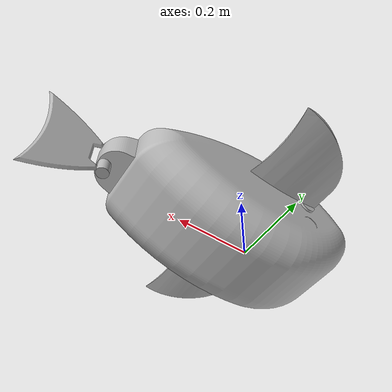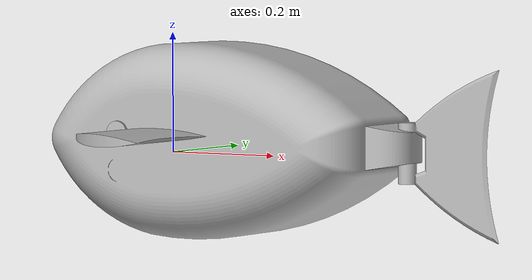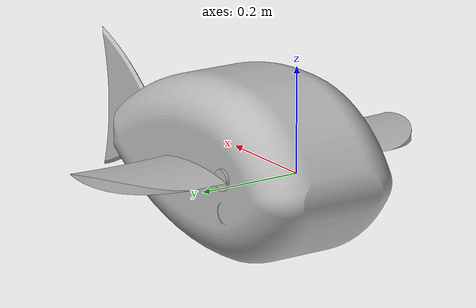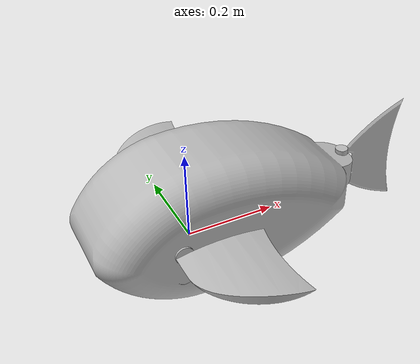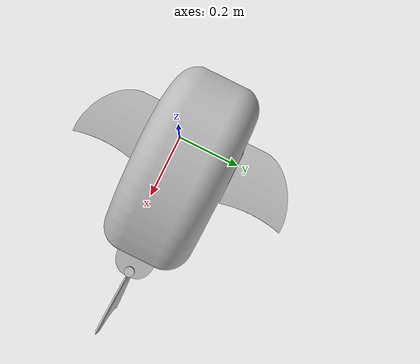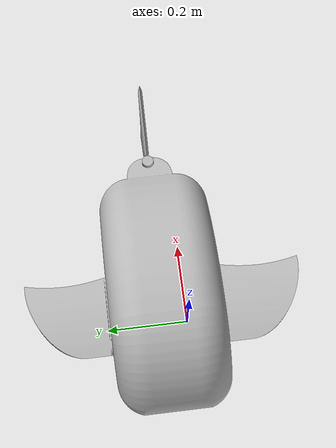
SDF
<sdf version='1.6'>
  <model name='fish_hpurv'>
    <link name='link_base'>
      <inertial>
        <pose>0.032582 0.049301 -0.019765 1.57 -0 0</pose>
        <mass>12.2</mass>
        <inertia>
          <ixx>0.0104225</ixx>
          <ixy>-1.73196e-18</ixy>
          <ixz>-3.47083e-18</ixz>
          <iyy>0.010101</iyy>
          <iyz>-2.56038e-07</iyz>
          <izz>0.0104225</izz>
        </inertia>
      </inertial>
      <collision name='link_base_collision'>
        <pose>0.032582 0.049301 -0.020428 1.57 -0 0</pose>
        <geometry>
          <mesh>
            <scale>1 1 1</scale>
            <uri>/home/uav/ros2_ws/install/fish_hpurv/share/fish_hpurv/meshes/link_base.stl</uri>
          </mesh>
        </geometry>
        <surface>
          <contact>
            <ode/>
          </contact>
          <friction>
            <ode/>
          </friction>
        </surface>
      </collision>
      <collision name='link_base_fixed_joint_lump__imu_link_collision_1'>
        <pose>0.032582 0.049301 0.02 0 -0 0</pose>
        <geometry>
          <box>
            <size>0.01 0.01 0.01</size>
          </box>
        </geometry>
        <surface>
          <contact>
            <ode/>
          </contact>
          <friction>
            <ode/>
          </friction>
        </surface>
      </collision>
      <collision name='link_base_fixed_joint_lump__laser_frame_collision_2'>
        <pose>0.032582 0.049301 0.02 0 -0 0</pose>
        <geometry>
          <cylinder>
            <length>0.04</length>
            <radius>0.05</radius>
          </cylinder>
        </geometry>
        <surface>
          <contact>
            <ode/>
          </contact>
          <friction>
            <ode/>
          </friction>
        </surface>
      </collision>
      <visual name='link_base_visual'>
        <pose>0.032582 0.049301 0.02 1.57 -0 0</pose>
        <geometry>
          <mesh>
            <scale>1 1 1</scale>
            <uri>/home/uav/ros2_ws/install/fish_hpurv/share/fish_hpurv/meshes/link_base.stl</uri>
          </mesh>
        </geometry>
      </visual>
      <visual name='link_base_fixed_joint_lump__imu_link_visual_1'>
        <pose>0.032582 0.049301 0.02 0 -0 0</pose>
        <geometry>
          <box>
            <size>0.01 0.01 0.01</size>
          </box>
        </geometry>
      </visual>
      <visual name='link_base_fixed_joint_lump__laser_frame_visual_2'>
        <pose>0.032582 0.049301 0.02 0 -0 0</pose>
        <geometry>
          <cylinder>
            <length>0.04</length>
            <radius>0.05</radius>
          </cylinder>
        </geometry>
        <material>
          <script>
            <name>Gazebo/Red</name>
            <uri>file://media/materials/scripts/gazebo.material</uri>
          </script>
        </material>
      </visual>
      <sensor name='dvl_sensor' type='ray'>
        <pose>0.03 -0.085 -0.06 3.14159 0.001593 3.14159</pose>
        <visualize>1</visualize>
        <update_rate>10</update_rate>
        <ray>
          <scan>
            <horizontal>
              <samples>4</samples>
              <min_angle>0</min_angle>
              <max_angle>6.28319</max_angle>
              <resolution>1</resolution>
            </horizontal>
            <vertical>
              <samples>1</samples>
              <min_angle>1.2217</min_angle>
              <max_angle>1.2217</max_angle>
            </vertical>
          </scan>
          <range>
            <min>0.1</min>
            <max>100</max>
          </range>
        </ray>
        <plugin name='custom_dvl_plugin' filename='libfish_dvl_plugin.so'/>
      </sensor>
      <sensor name='imu_sensor' type='imu'>
        <update_rate>50</update_rate>
        <always_on>1</always_on>
        <visualize>1</visualize>
        <plugin name='imu_plugin' filename='libgazebo_ros_imu_sensor.so'>
          <ros>
            <argument>~/out:=/imu/data</argument>
          </ros>
          <topicName>/imu/data</topicName>
          <frameName>imu_link</frameName>
        </plugin>
        <pose>0.032582 0.049301 0.02 0 -0 0</pose>
      </sensor>
      <sensor name='laser' type='ray'>
        <visualize>1</visualize>
        <update_rate>10</update_rate>
        <ray>
          <scan>
            <horizontal>
              <samples>360</samples>
              <min_angle>-3.14</min_angle>
              <max_angle>3.14</max_angle>
              <resolution>1</resolution>
            </horizontal>
          </scan>
          <range>
            <min>0.3</min>
            <max>12</max>
          </range>
        </ray>
        <plugin name='laser_controller' filename='libgazebo_ros_ray_sensor.so'>
          <ros>
            <argument>~/out:=/scan</argument>
          </ros>
          <output_type>sensor_msgs/LaserScan</output_type>
          <frame_name>laser_frame</frame_name>
        </plugin>
        <pose>0.032582 0.049301 0.02 0 -0 0</pose>
      </sensor>
    </link>
    <joint name='caudal_joint' type='revolute'>
      <pose relative_to='link_base'>0.425323 0.05 0.06 0 -0 0</pose>
      <parent>link_base</parent>
      <child>link_caudal</child>
      <axis>
        <xyz>0 0 1</xyz>
        <limit>
          <lower>-0.523599</lower>
          <upper>0.523599</upper>
          <effort>10</effort>
          <velocity>10</velocity>
        </limit>
        <dynamics>
          <spring_reference>0</spring_reference>
          <spring_stiffness>0</spring_stiffness>
        </dynamics>
      </axis>
    </joint>
    <link name='link_caudal'>
      <pose relative_to='caudal_joint'>0 0 0 0 -0 0</pose>
      <inertial>
        <pose>-0.378805 0 -0.05 1.5708 -0 0</pose>
        <mass>0.2</mass>
        <inertia>
          <ixx>0.005</ixx>
          <ixy>0</ixy>
          <ixz>0</ixz>
          <iyy>0.005</iyy>
          <iyz>0</iyz>
          <izz>0.005</izz>
        </inertia>
      </inertial>
      <collision name='link_caudal_collision'>
        <pose>-0.378805 0 -0.05 1.5708 -0 0</pose>
        <geometry>
          <mesh>
            <scale>1 1 1</scale>
            <uri>/home/uav/ros2_ws/install/fish_hpurv/share/fish_hpurv/meshes/link_caudal.stl</uri>
          </mesh>
        </geometry>
      </collision>
      <visual name='link_caudal_visual'>
        <pose>-0.378805 0 -0.05 1.5708 -0 0</pose>
        <geometry>
          <mesh>
            <scale>1 1 1</scale>
            <uri>/home/uav/ros2_ws/install/fish_hpurv/share/fish_hpurv/meshes/link_caudal.stl</uri>
          </mesh>
        </geometry>
      </visual>
    </link>
    <joint name='joint1' type='revolute'>
      <pose relative_to='link_base'>-0.05 0.18 0.035 1.57 -0 0</pose>
      <parent>link_base</parent>
      <child>link_pectoral_left</child>
      <axis>
        <xyz>0 0 1</xyz>
        <limit>
          <lower>-0.785398</lower>
          <upper>0.785398</upper>
          <effort>10</effort>
          <velocity>10</velocity>
        </limit>
        <dynamics>
          <spring_reference>0</spring_reference>
          <spring_stiffness>0</spring_stiffness>
        </dynamics>
      </axis>
    </joint>
    <link name='link_pectoral_left'>
      <pose relative_to='joint1'>0 0 0 0 -0 0</pose>
      <inertial>
        <pose>0.082983 -0.047058 0.13 3.14 -0 0</pose>
        <mass>0.1</mass>
        <inertia>
          <ixx>0.001</ixx>
          <ixy>0</ixy>
          <ixz>0</ixz>
          <iyy>0.001</iyy>
          <iyz>0</iyz>
          <izz>0.001</izz>
        </inertia>
      </inertial>
      <collision name='link_pectoral_left_collision'>
        <pose>0.082983 -0.047058 0.13 3.14 -0 0</pose>
        <geometry>
          <mesh>
            <scale>1 1 1</scale>
            <uri>/home/uav/ros2_ws/install/fish_hpurv/share/fish_hpurv/meshes/link_pectoral_left.stl</uri>
          </mesh>
        </geometry>
      </collision>
      <visual name='link_pectoral_left_visual'>
        <pose>0.082983 -0.047058 0.13 3.14 -0 0</pose>
        <geometry>
          <mesh>
            <scale>1 1 1</scale>
            <uri>/home/uav/ros2_ws/install/fish_hpurv/share/fish_hpurv/meshes/link_pectoral_left.stl</uri>
          </mesh>
        </geometry>
      </visual>
    </link>
    <joint name='joint2' type='revolute'>
      <pose relative_to='link_base'>-0.05 -0.08 0.035 -1.57 0 0</pose>
      <parent>link_base</parent>
      <child>link_pectoral_right</child>
      <axis>
        <xyz>0 0 1</xyz>
        <limit>
          <lower>-0.785398</lower>
          <upper>0.785398</upper>
          <effort>10</effort>
          <velocity>10</velocity>
        </limit>
        <dynamics>
          <spring_reference>0</spring_reference>
          <spring_stiffness>0</spring_stiffness>
        </dynamics>
      </axis>
    </joint>
    <link name='link_pectoral_right'>
      <pose relative_to='joint2'>0 0 0 0 -0 0</pose>
      <inertial>
        <pose>0.082983 0.047058 0.13 0 -0 0</pose>
        <mass>0.1</mass>
        <inertia>
          <ixx>0.001</ixx>
          <ixy>0</ixy>
          <ixz>0</ixz>
          <iyy>0.001</iyy>
          <iyz>0</iyz>
          <izz>0.001</izz>
        </inertia>
      </inertial>
      <collision name='link_pectoral_right_collision'>
        <pose>0.082983 0.047058 0.13 0 -0 0</pose>
        <geometry>
          <mesh>
            <scale>1 1 1</scale>
            <uri>/home/uav/ros2_ws/install/fish_hpurv/share/fish_hpurv/meshes/link_pectoral_right.stl</uri>
          </mesh>
        </geometry>
      </collision>
      <visual name='link_pectoral_right_visual'>
        <pose>0.082983 0.047058 0.13 0 -0 0</pose>
        <geometry>
          <mesh>
            <scale>1 1 1</scale>
            <uri>/home/uav/ros2_ws/install/fish_hpurv/share/fish_hpurv/meshes/link_pectoral_right.stl</uri>
          </mesh>
        </geometry>
      </visual>
    </link>
    <static>0</static>
    <plugin name='buoyancy_plugin' filename='libBuoyancyPlugin.so'>
      <fluid_density>1000</fluid_density>
      <link name='link_base'>
        <volume>0.0122</volume>
        <center_of_volume>0.0325815 0.0493006 0.02</center_of_volume>
      </link>
      <link name='link_caudal'>
        <volume>0.0002</volume>
        <center_of_volume>-0.378805 0 -0.05</center_of_volume>
      </link>
      <link name='link_pectoral_left'>
        <volume>0.0001</volume>
        <center_of_volume>0.0829833 -0.0470575 0.13</center_of_volume>
      </link>
      <link name='link_pectoral_right'>
        <volume>0.0001</volume>
        <center_of_volume>0.0829833 0.0470575 0.13</center_of_volume>
      </link>
    </plugin>
   <plugin name="caudal_force_plugin" filename="/home/uav/ros2_ws/install/fish_hpurv/lib/libcaudal_force_plugin.so"/>
  </model>
</sdf>
